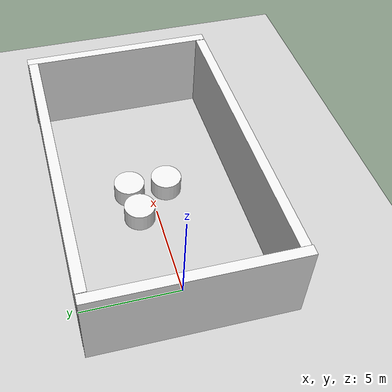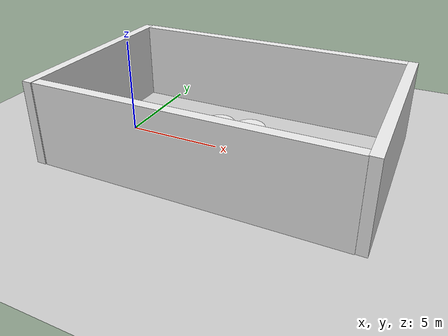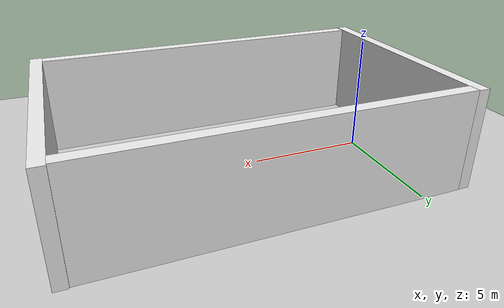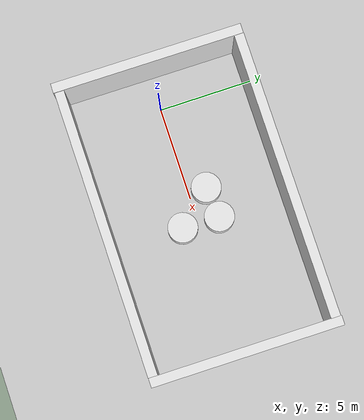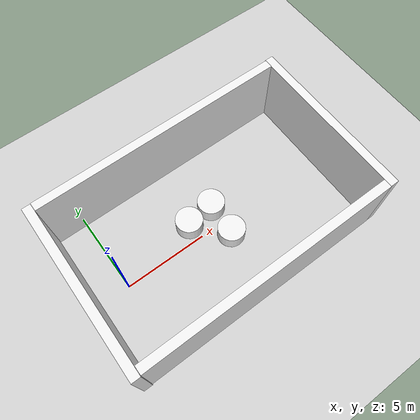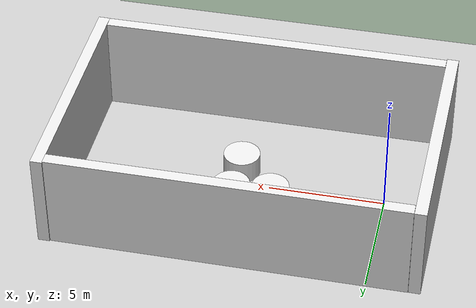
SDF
<sdf version="1.7">
 <world name="default">
  <light name="sun" type="directional">
   <pose>0 0 10 0 -0 0</pose>
   <diffuse>0.8 0.8 0.8 1</diffuse>
   <specular>0.2 0.2 0.2 1</specular>
   <attenuation>
    <range>1000</range>
    <constant>0.9</constant>
    <linear>0.01</linear>
    <quadratic>0.001</quadratic>
   </attenuation>
   <direction>-0.5 0.1 -0.9</direction>
   <spot><inner_angle>0</inner_angle><outer_angle>0</outer_angle><falloff>0</falloff></spot>
  </light>
  <model name="ground_plane">
   <static>1</static>
   <link name="link">
    <collision name="collision">
     <geometry><plane><normal>0 0 1</normal><size>100 100</size></plane></geometry>
     <surface><friction><ode><mu>100</mu><mu2>50</mu2></ode></friction></surface>
    </collision>
    <visual name="visual">
     <cast_shadows>0</cast_shadows>
     <geometry><plane><normal>0 0 1</normal><size>100 100</size></plane></geometry>
     <material>
      <script><uri>file://media/materials/scripts/gazebo.material</uri><name>Gazebo/Grey</name></script>
     </material>
    </visual>
   </link>
  </model>
  <gravity>0 0 -9.8</gravity>
  <magnetic_field>6e-06 2.3e-05 -4.2e-05</magnetic_field>
  <atmosphere type="adiabatic"/>
  <physics type="ode">
   <max_step_size>0.001</max_step_size>
   <real_time_factor>1</real_time_factor>
   <real_time_update_rate>1000</real_time_update_rate>
  </physics>
  <scene><ambient>0.4 0.4 0.4 1</ambient><background>0.7 0.7 0.7 1</background><shadows>1</shadows></scene>
  <spherical_coordinates>
   <surface_model>EARTH_WGS84</surface_model>
   <latitude_deg>0</latitude_deg>
   <longitude_deg>0</longitude_deg>
   <elevation>0</elevation>
   <heading_deg>0</heading_deg>
  </spherical_coordinates>
  <model name="unit_box">
   <pose>-2.03158 0.026321 2.14681 -0.003578 -1.3e-05 -0.003558</pose>
   <link name="link">
    <inertial>
     <mass>1</mass>
     <inertia>
      <ixx>0.166667</ixx>
      <ixy>0</ixy>
      <ixz>0</ixz>
      <iyy>0.166667</iyy>
      <iyz>0</iyz>
      <izz>0.166667</izz>
     </inertia>
    </inertial>
    <collision name="collision"><geometry><box><size>0.506806 10.0952 4.3295</size></box></geometry></collision>
    <visual name="visual">
     <geometry><box><size>0.506806 10.0952 4.3295</size></box></geometry>
     <material>
      <script><name>Gazebo/White</name><uri>file://media/materials/scripts/gazebo.material</uri></script>
     </material>
    </visual>
   </link>
   <static>1</static>
  </model>
  <model name="unit_box_clone">
   <pose>13.5615 0.140256 2.14681 -0.003578 -1.3e-05 -0.003558</pose>
   <link name="link">
    <inertial>
     <mass>1</mass>
     <inertia>
      <ixx>0.166667</ixx>
      <ixy>0</ixy>
      <ixz>0</ixz>
      <iyy>0.166667</iyy>
      <iyz>0</iyz>
      <izz>0.166667</izz>
     </inertia>
    </inertial>
    <collision name="collision"><geometry><box><size>0.506807 10.0952 4.3295</size></box></geometry></collision>
    <visual name="visual">
     <geometry><box><size>0.506807 10.0952 4.3295</size></box></geometry>
     <material>
      <script><name>Gazebo/White</name><uri>file://media/materials/scripts/gazebo.material</uri></script>
     </material>
    </visual>
   </link>
   <static>1</static>
  </model>
  <model name="unit_box_clone_0">
   <pose>5.76205 -4.69481 2.14681 -1.3e-05 -0.003578 -1.56704</pose>
   <link name="link">
    <inertial>
     <mass>1</mass>
     <inertia>
      <ixx>0.166667</ixx>
      <ixy>0</ixy>
      <ixz>0</ixz>
      <iyy>0.166667</iyy>
      <iyz>0</iyz>
      <izz>0.166667</izz>
     </inertia>
    </inertial>
    <collision name="collision"><geometry><box><size>0.506807 15.0892 4.3295</size></box></geometry></collision>
    <visual name="visual">
     <geometry><box><size>0.506807 15.0892 4.3295</size></box></geometry>
     <material>
      <script><name>Gazebo/White</name><uri>file://media/materials/scripts/gazebo.material</uri></script>
     </material>
    </visual>
   </link>
   <static>1</static>
  </model>
  <model name="unit_box_clone_0_clone">
   <pose>5.79034 4.85986 2.14681 -1.3e-05 -0.003578 -1.56704</pose>
   <link name="link">
    <inertial>
     <mass>1</mass>
     <inertia>
      <ixx>0.166667</ixx>
      <ixy>0</ixy>
      <ixz>0</ixz>
      <iyy>0.166667</iyy>
      <iyz>0</iyz>
      <izz>0.166667</izz>
     </inertia>
    </inertial>
    <collision name="collision"><geometry><box><size>0.506807 15.0892 4.3295</size></box></geometry></collision>
    <visual name="visual">
     <geometry><box><size>0.506807 15.0892 4.3295</size></box></geometry>
     <material>
      <script><name>Gazebo/White</name><uri>file://media/materials/scripts/gazebo.material</uri></script>
     </material>
    </visual>
   </link>
   <static>1</static>
  </model>
  <model name="unit_cylinder_0">
   <pose>6.44231 1.13329 0.499993 -3e-06 -4e-06 -0</pose>
   <link name="link">
    <inertial>
     <mass>1</mass>
     <inertia><ixx>0.145833</ixx><ixy>0</ixy><ixz>0</ixz><iyy>0.145833</iyy><iyz>0</iyz><izz>0.125</izz></inertia>
    </inertial>
    <collision name="collision">
     <geometry><cylinder><radius>0.8</radius><length>1</length></cylinder></geometry>
    </collision>
    <visual name="visual">
     <geometry><cylinder><radius>0.8</radius><length>1</length></cylinder></geometry>
     <material>
      <script><name>Gazebo/White</name><uri>file://media/materials/scripts/gazebo.material</uri></script>
     </material>
    </visual>
   </link>
  </model>
  <model name="unit_cylinder_1">
   <pose>6.40414 -0.867424 0.499993 -3e-06 -3e-06 0</pose>
   <link name="link">
    <inertial>
     <mass>1</mass>
     <inertia><ixx>0.145833</ixx><ixy>0</ixy><ixz>0</ixz><iyy>0.145833</iyy><iyz>0</iyz><izz>0.125</izz></inertia>
    </inertial>
    <collision name="collision">
     <geometry><cylinder><radius>0.8</radius><length>1</length></cylinder></geometry>
    </collision>
    <visual name="visual">
     <geometry><cylinder><radius>0.8</radius><length>1</length></cylinder></geometry>
     <material>
      <script><name>Gazebo/White</name><uri>file://media/materials/scripts/gazebo.material</uri></script>
     </material>
    </visual>
   </link>
  </model>
  <model name="unit_cylinder_2">
   <pose>4.77063 0.955787 0.499997 3e-06 4e-06 -0</pose>
   <link name="link">
    <inertial>
     <mass>1</mass>
     <inertia><ixx>0.145833</ixx><ixy>0</ixy><ixz>0</ixz><iyy>0.145833</iyy><iyz>0</iyz><izz>0.125</izz></inertia>
    </inertial>
    <collision name="collision">
     <geometry><cylinder><radius>0.8</radius><length>1</length></cylinder></geometry>
    </collision>
    <visual name="visual">
     <geometry><cylinder><radius>0.8</radius><length>1</length></cylinder></geometry>
     <material>
      <script><name>Gazebo/White</name><uri>file://media/materials/scripts/gazebo.material</uri></script>
     </material>
    </visual>
   </link>
  </model>
 </world>
</sdf>
